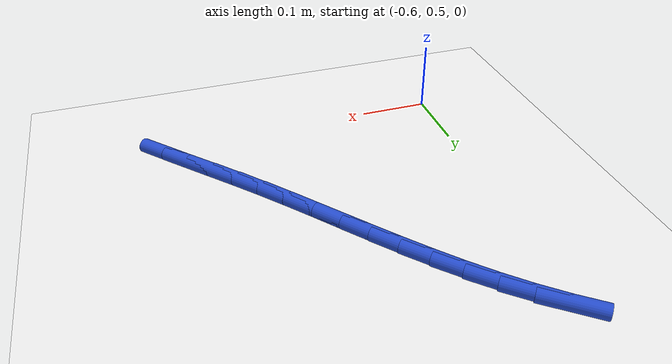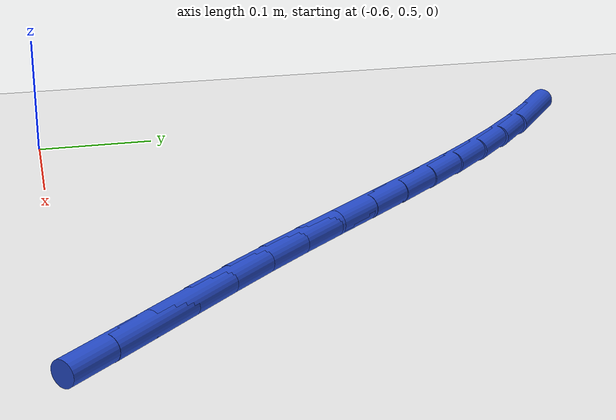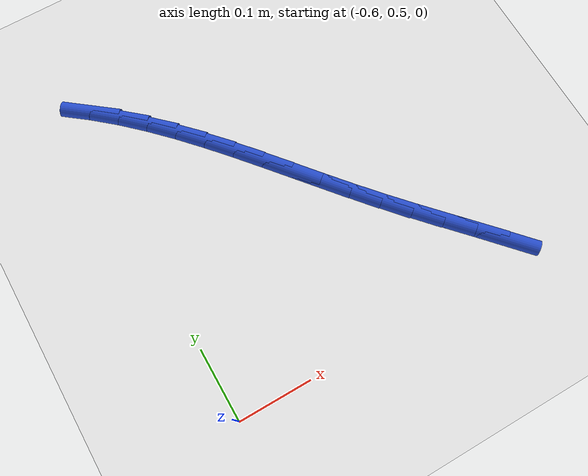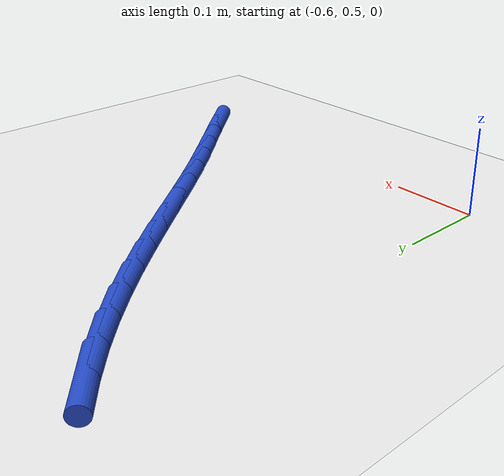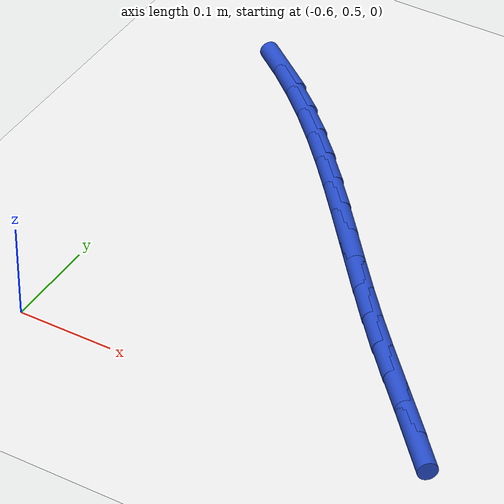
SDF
<sdf version="1.6">
 <world name="default">
  <model name="ground_plane">
   <static>1</static>
   <link name="link">
    <collision name="collision">
     <geometry><plane><normal>0 0 1</normal><size>100 100</size></plane></geometry>
     <surface><friction><ode><mu>100</mu><mu2>50</mu2></ode></friction></surface>
    </collision>
    <visual name="visual">
     <cast_shadows>0</cast_shadows>
     <geometry><plane><normal>0 0 1</normal><size>100 100</size></plane></geometry>
     <material>
      <script><uri>file://media/materials/scripts/gazebo.material</uri><name>Gazebo/WhiteGlow</name></script>
     </material>
    </visual>
   </link>
  </model>
  <model name="line">
   <link name="link_14">
    <pose>-0.1906592531480676 0.5263550727474263 0.01 0 1.57 -0.8364956661085297</pose>
    <collision name="collision">
     <geometry><cylinder><radius>0.01</radius><length>0.08</length></cylinder></geometry>
    </collision>
    <visual name="visual">
     <material>
      <script><name>Gazebo/Blue</name><uri>file://media/materials/scripts/gazebo.material</uri></script>
     </material>
     <geometry><cylinder><radius>0.01</radius><length>0.08</length></cylinder></geometry>
    </visual>
   </link>
   <link name="link_15">
    <pose>-0.21858509458202008 0.5572912360207042 0.01 0 1.57 -0.8278171627725679</pose>
    <collision name="collision">
     <geometry><cylinder><radius>0.01</radius><length>0.08</length></cylinder></geometry>
    </collision>
    <visual name="visual">
     <material>
      <script><name>Gazebo/Blue</name><uri>file://media/materials/scripts/gazebo.material</uri></script>
     </material>
     <geometry><cylinder><radius>0.01</radius><length>0.08</length></cylinder></geometry>
    </visual>
   </link>
   <link name="link_16">
    <pose>-0.24689618661351304 0.5881121543116816 0.01 0 1.57 -0.8296854988067065</pose>
    <collision name="collision">
     <geometry><cylinder><radius>0.01</radius><length>0.08</length></cylinder></geometry>
    </collision>
    <visual name="visual">
     <material>
      <script><name>Gazebo/Blue</name><uri>file://media/materials/scripts/gazebo.material</uri></script>
     </material>
     <geometry><cylinder><radius>0.01</radius><length>0.08</length></cylinder></geometry>
    </visual>
   </link>
   <link name="link_17">
    <pose>-0.2752073055184735 0.6190489210453233 0.01 0 1.57 -0.8420476157345286</pose>
    <collision name="collision">
     <geometry><cylinder><radius>0.01</radius><length>0.08</length></cylinder></geometry>
    </collision>
    <visual name="visual">
     <material>
      <script><name>Gazebo/Blue</name><uri>file://media/materials/scripts/gazebo.material</uri></script>
     </material>
     <geometry><cylinder><radius>0.01</radius><length>0.08</length></cylinder></geometry>
    </visual>
   </link>
   <link name="link_18">
    <pose>-0.30313322798610426 0.650332629327877 0.01 0 1.57 -0.8617709014395916</pose>
    <collision name="collision">
     <geometry><cylinder><radius>0.01</radius><length>0.08</length></cylinder></geometry>
    </collision>
    <visual name="visual">
     <material>
      <script><name>Gazebo/Blue</name><uri>file://media/materials/scripts/gazebo.material</uri></script>
     </material>
     <geometry><cylinder><radius>0.01</radius><length>0.08</length></cylinder></geometry>
    </visual>
   </link>
   <link name="link_19">
    <pose>-0.3303950353820528 0.6821123904900916 0.01 0 1.57 -0.8767233830620643</pose>
    <collision name="collision">
     <geometry><cylinder><radius>0.01</radius><length>0.08</length></cylinder></geometry>
    </collision>
    <visual name="visual">
     <material>
      <script><name>Gazebo/Blue</name><uri>file://media/materials/scripts/gazebo.material</uri></script>
     </material>
     <geometry><cylinder><radius>0.01</radius><length>0.08</length></cylinder></geometry>
    </visual>
   </link>
   <link name="link_20">
    <pose>-0.35711913555311137 0.714224729571198 0.01 0 1.57 -0.8839844590462658</pose>
    <collision name="collision">
     <geometry><cylinder><radius>0.01</radius><length>0.08</length></cylinder></geometry>
    </collision>
    <visual name="visual">
     <material>
      <script><name>Gazebo/Blue</name><uri>file://media/materials/scripts/gazebo.material</uri></script>
     </material>
     <geometry><cylinder><radius>0.01</radius><length>0.08</length></cylinder></geometry>
    </visual>
   </link>
   <link name="link_21">
    <pose>-0.3835285254673263 0.7464316824353585 0.01 0 1.57 -0.8835029012207111</pose>
    <collision name="collision">
     <geometry><cylinder><radius>0.01</radius><length>0.08</length></cylinder></geometry>
    </collision>
    <visual name="visual">
     <material>
      <script><name>Gazebo/Blue</name><uri>file://media/materials/scripts/gazebo.material</uri></script>
     </material>
     <geometry><cylinder><radius>0.01</radius><length>0.08</length></cylinder></geometry>
    </visual>
   </link>
   <link name="link_22">
    <pose>-0.40984620209274397 0.7784952849467354 0.01 0 1.57 -0.8751821961282736</pose>
    <collision name="collision">
     <geometry><cylinder><radius>0.01</radius><length>0.08</length></cylinder></geometry>
    </collision>
    <visual name="visual">
     <material>
      <script><name>Gazebo/Blue</name><uri>file://media/materials/scripts/gazebo.material</uri></script>
     </material>
     <geometry><cylinder><radius>0.01</radius><length>0.08</length></cylinder></geometry>
    </visual>
   </link>
   <link name="link_23">
    <pose>-0.4362951623974108 0.8101775729694912 0.01 0 1.57 -0.8588796615535649</pose>
    <collision name="collision">
     <geometry><cylinder><radius>0.01</radius><length>0.08</length></cylinder></geometry>
    </collision>
    <visual name="visual">
     <material>
      <script><name>Gazebo/Blue</name><uri>file://media/materials/scripts/gazebo.material</uri></script>
     </material>
     <geometry><cylinder><radius>0.01</radius><length>0.08</length></cylinder></geometry>
    </visual>
   </link>
   <link name="link_24">
    <pose>-0.46309840334937274 0.841240582367788 0.01 0 1.57 -0.8344199841911342</pose>
    <collision name="collision">
     <geometry><cylinder><radius>0.01</radius><length>0.08</length></cylinder></geometry>
    </collision>
    <visual name="visual">
     <material>
      <script><name>Gazebo/Blue</name><uri>file://media/materials/scripts/gazebo.material</uri></script>
     </material>
     <geometry><cylinder><radius>0.01</radius><length>0.08</length></cylinder></geometry>
    </visual>
   </link>
   <link name="link_25">
    <pose>-0.49047892191667664 0.8714463490057884 0.01 0 1.57 -0.8016254809991757</pose>
    <collision name="collision">
     <geometry><cylinder><radius>0.01</radius><length>0.08</length></cylinder></geometry>
    </collision>
    <visual name="visual">
     <material>
      <script><name>Gazebo/Blue</name><uri>file://media/materials/scripts/gazebo.material</uri></script>
     </material>
     <geometry><cylinder><radius>0.01</radius><length>0.08</length></cylinder></geometry>
    </visual>
   </link>
   <link name="link_26">
    <pose>-0.5186597150673687 0.9005569087476553 0.01 0 1.57 -0.7603658432089958</pose>
    <collision name="collision">
     <geometry><cylinder><radius>0.01</radius><length>0.08</length></cylinder></geometry>
    </collision>
    <visual name="visual">
     <material>
      <script><name>Gazebo/Blue</name><uri>file://media/materials/scripts/gazebo.material</uri></script>
     </material>
     <geometry><cylinder><radius>0.01</radius><length>0.08</length></cylinder></geometry>
    </visual>
   </link>
   <link name="link_27">
    <pose>-0.5478637797694952 0.9283342974575503 0.01 0 1.57 -0.7109970152483571</pose>
    <collision name="collision">
     <geometry><cylinder><radius>0.01</radius><length>0.08</length></cylinder></geometry>
    </collision>
    <visual name="visual">
     <material>
      <script><name>Gazebo/Blue</name><uri>file://media/materials/scripts/gazebo.material</uri></script>
     </material>
     <geometry><cylinder><radius>0.01</radius><length>0.08</length></cylinder></geometry>
    </visual>
   </link>
   <link name="link_28">
    <pose>-0.5783044889365828 0.9545517768595727 0.01 0 1.57 -0.6601021365159226</pose>
    <collision name="collision">
     <geometry><cylinder><radius>0.01</radius><length>0.08</length></cylinder></geometry>
    </collision>
    <visual name="visual">
     <material>
      <script><name>Gazebo/Blue</name><uri>file://media/materials/scripts/gazebo.material</uri></script>
     </material>
     <geometry><cylinder><radius>0.01</radius><length>0.08</length></cylinder></geometry>
    </visual>
   </link>
  </model>
 </world>
</sdf>
